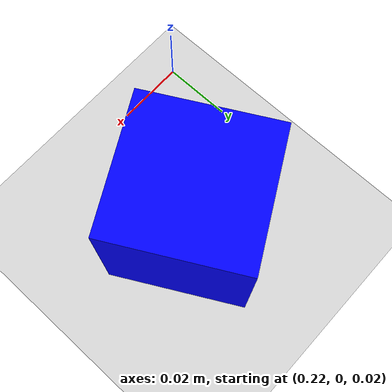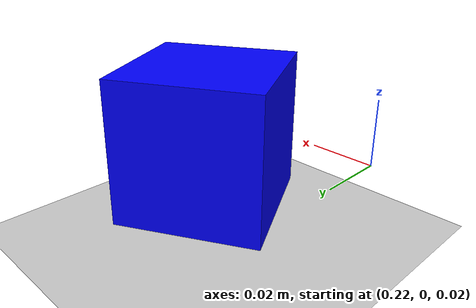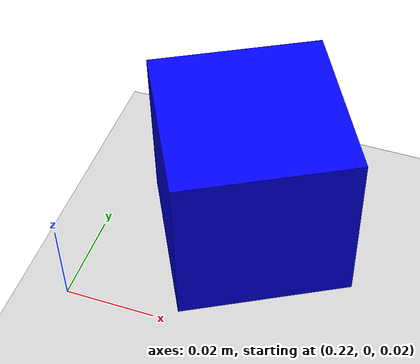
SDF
<?xml version="1.0" ?>
<sdf version='1.6'>
    <world name='default'>
        <!-- A global light source -->
        <include>
            <uri>model://sun</uri>
        </include>

        <!-- A ground plane -->
        <include>
            <uri>model://ground_plane</uri>
        </include>

        <!--CUBES-->
        <model name='cube_blue'>
            <include>
                <uri>model://cube_blue</uri>
            </include>
            <pose frame=''>0.25 0.0357 0.011 0.0 0.0 0.5</pose>
        </model>

        <physics name='default_physics' default='0' type='ode'>
            <max_step_size>0.001</max_step_size>
            <real_time_factor>1</real_time_factor>
            <real_time_update_rate>1000</real_time_update_rate>
        </physics>

    </world>
</sdf>

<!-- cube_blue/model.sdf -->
<sdf version="1.5">
  <model name="cube_blue">
    <link name="link">
      <pose>0 0 0.02 0 0 0</pose>
      <inertial>
        <mass>0.027</mass>
        <inertia>
          <ixx>2.3541666666666672e-05</ixx>
          <ixy>0</ixy>
          <ixz>0</ixz>
          <iyy>2.3541666666666672e-05</iyy>
          <iyz>0</iyz>
          <izz>2.3541666666666672e-05</izz>
        </inertia>
      </inertial>

      <collision name="collision">
        <geometry>
          <box>
            <size>0.04 0.04 0.04</size>
          </box>
        </geometry>
        <surface>
          <contact>
            <!-- Red Pine coefficients for longitudinal axis of the wood
                 according to:
                 http://www.fpl.fs.fed.us/documnts/fplgtr/fplgtr113/ch04.pdf -->
            <poissons_ratio>0.347</poissons_ratio>
            <elastic_modulus>8.8e+09</elastic_modulus>
            <ode>
              <kp>100000</kp>
              <kd>1</kd>
              <max_vel>1.0</max_vel>
              <min_depth>0.001</min_depth>
            </ode>
          </contact>
          <friction>
            <torsional>
              <coefficient>1.0</coefficient>
              <use_patch_radius>0</use_patch_radius>
              <surface_radius>0.05</surface_radius>
            </torsional>
          </friction>
        </surface>
      </collision>

      <visual name="visual">
        <geometry>
          <box>
            <size>0.04 0.04 0.04</size>
          </box>
        </geometry>
        <material>
         <ambient>0 0 1 1</ambient>
				 <diffuse>0 0 1 1</diffuse>
				 <specular>0.1 0.1 0.1 1</specular>
				 <emissive>0 0 0 0</emissive>
        </material>
      </visual>

    </link>
  </model>
</sdf>
